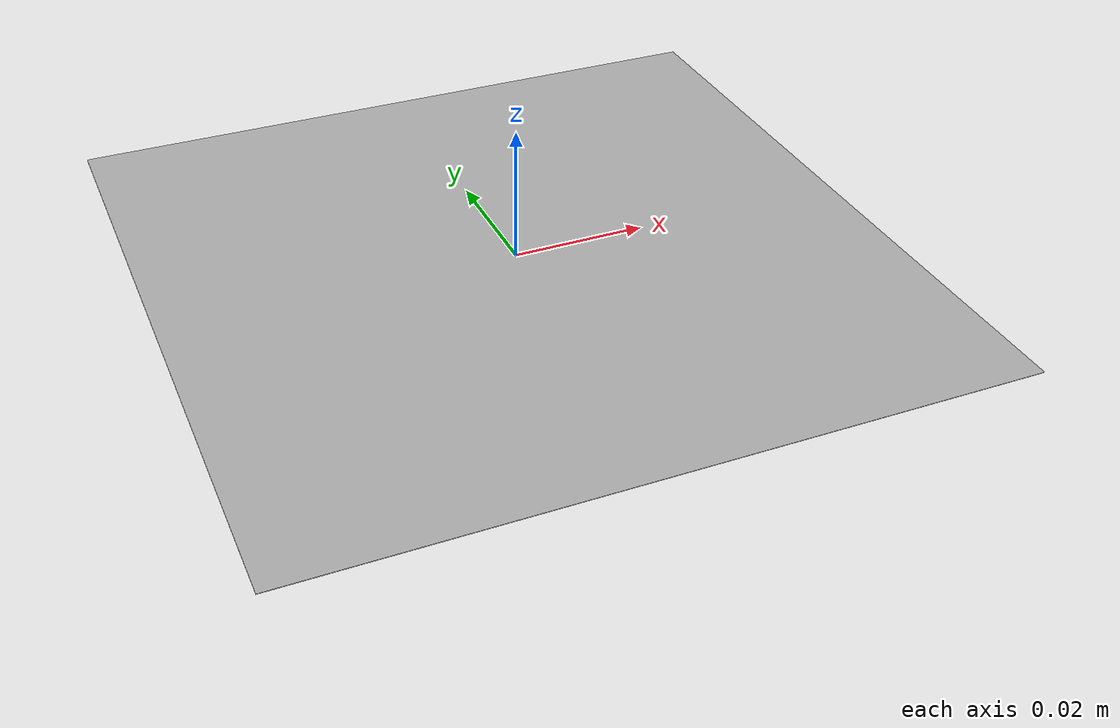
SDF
<?xml version='1.0'?>
<sdf version='1.6'>
  <model name='Apriltag36_11_bundle_0_4'>
    <link name='main'>
      <pose frame=''>0 0 0 0 0 0</pose>
      <visual name='main_Visual'>
        <geometry>
          <box>
            <size>0.105 0.105 0.0001</size>
          </box>
        </geometry>
        <material>
          <script>
            <uri>model://Apriltag36_11_bundle_0_4/materials/scripts</uri>
            <uri>model://Apriltag36_11_bundle_0_4/materials/textures</uri>
            <name>Apriltag36_11_bundle_0_4</name>
          </script>
        </material>
      </visual>
    </link>
    <static>1</static>
  </model>
</sdf>
